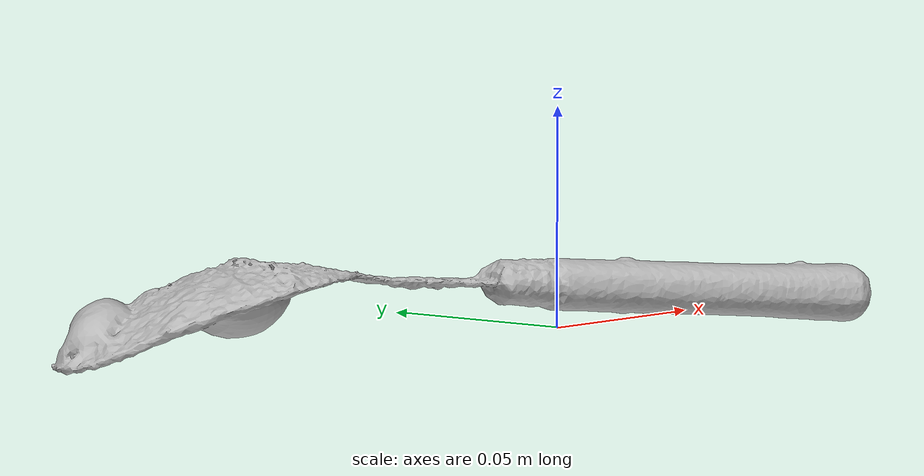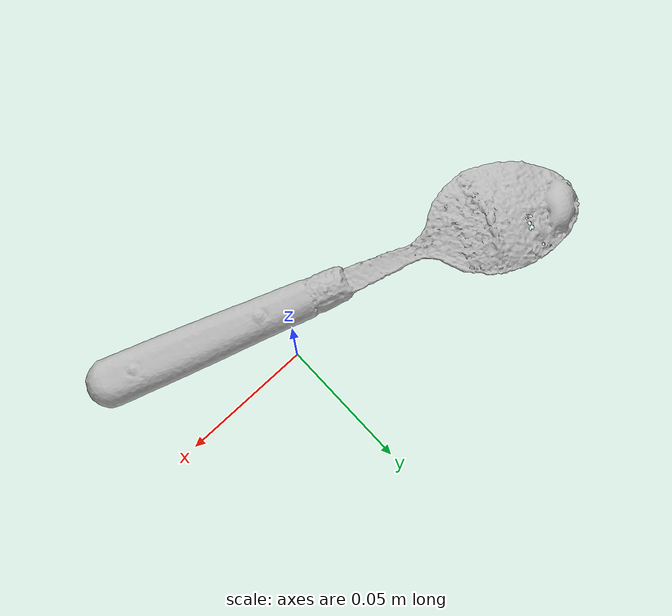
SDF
<?xml version='1.0'?>
<sdf version="1.4">
  <model name="spoon">
    <static>false</static>
    <link name="link">
      <inertial>
        <pose>-0.01805591680130397 -0.01016056511934541 0.010048592434568836 -1.0265757905962998 -1.5155464675064887 0.6802958339721472</pose>
        <mass>2.432101198831533e-05</mass>
        <inertia>
          <ixx>9.096196827439232e-08</ixx>
          <ixy>1.1991361190806962e-24</ixy>
          <ixz>2.402786663772447e-24</ixz>
          <iyy>9.038583292816076e-08</iyy>
          <iyz>1.4967548035297828e-23</iyz>
          <izz>1.1819371187282668e-09</izz>
        </inertia>
      </inertial>
      <collision name="collision">
        <geometry>
          <mesh>
            <!-- Use a downsampled mesh for collisions -->
            <uri>model://031_spoon/google_16k/031_spoon.obj</uri>
            </mesh>
        </geometry>
        <surface>
          <friction>
            <ode>
              <mu>0.9</mu>
              <mu2>0.9</mu2>
            </ode>
          </friction>
          <contact>
            <ode>
              <kp>1000000000000.0</kp>
              <kd>1</kd>
              <min_depth>0.0001</min_depth>
              <max_vel>0.01</max_vel>
            </ode>
          </contact>
          <bounce>
            <restitution_coefficient>0.1</restitution_coefficient>
            <threshold>1000.0</threshold>
          </bounce>
        </surface>
      </collision>
      <visual name="visual">
        <geometry>
          <mesh>
            <uri>model://031_spoon/google_16k/031_spoon.dae</uri>
            </mesh>
        </geometry>
      </visual>
    </link>
  </model>
</sdf>
